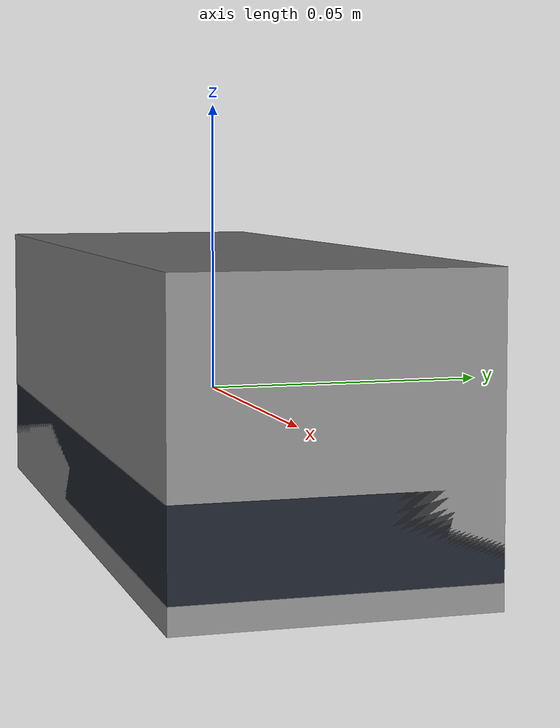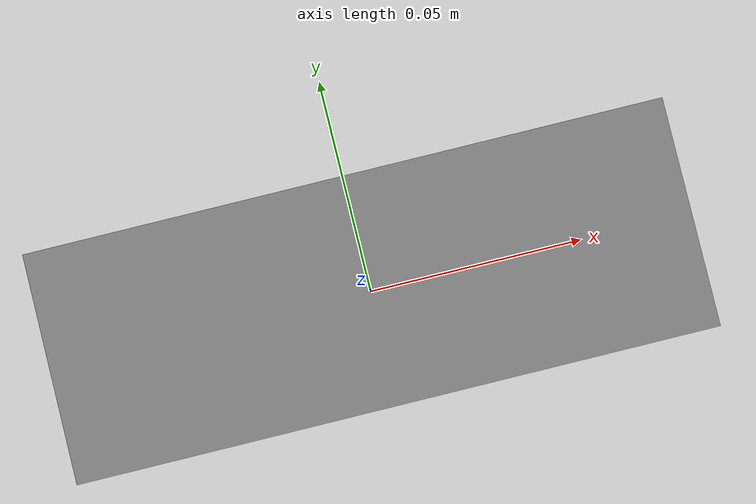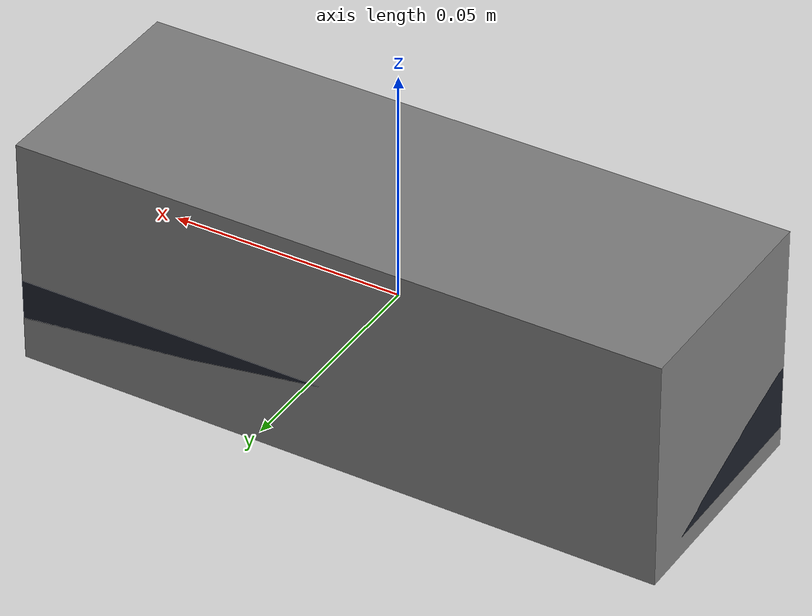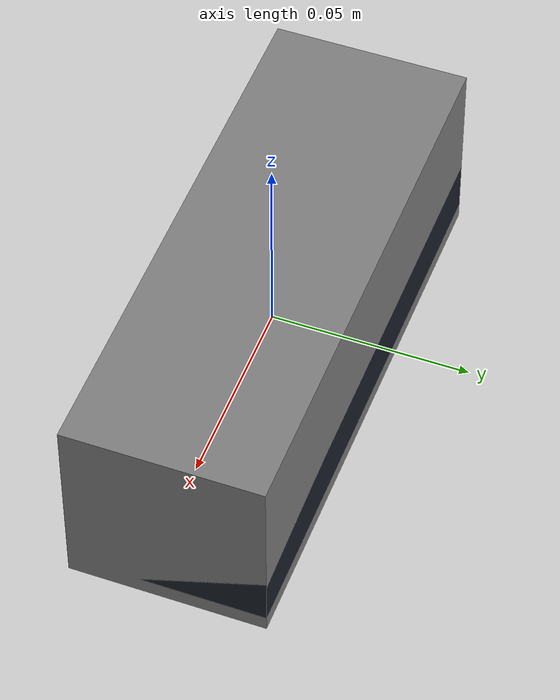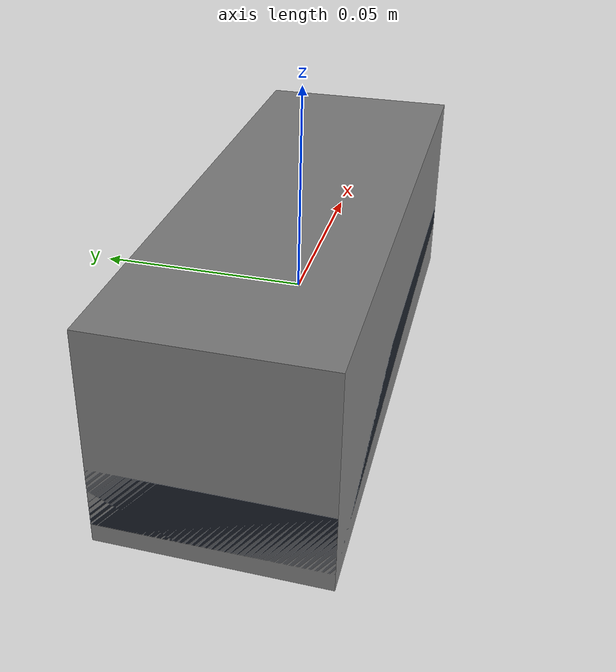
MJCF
<mujoco model="vla82_vla82_050">
  <compiler angle="radian"/>
  <asset>
    <texture name="source_texture" type="2d" file="source_texture.png"/>
    <material name="source_material" texture="source_texture" rgba="1 1 1 1"/>
  </asset>
  <default>
    <default class="visual"><geom contype="0" conaffinity="0" group="1"/></default>
    <default class="collision"><geom contype="1" conaffinity="1" group="0" density="300" friction="0.45 0.004 0.0001" solref="0.02 1" solimp="0.9 0.95 0.001"/></default>
    <default class="region"><geom contype="0" conaffinity="0" group="1" rgba="0 1 0 0" mass="0"/></default>
  </default>
  <worldbody><body><body name="object">
    <geom name="stapler_base" class="visual" type="box" pos="0 0 -0.013750" size="0.070000 0.025000 0.007000" rgba="0.10 0.12 0.16 1"/>
    <geom name="stapler_metal_channel" class="visual" type="box" pos="0.005600 0 -0.002500" size="0.054600 0.012000 0.003000" rgba="0.62 0.66 0.70 1"/>
    <geom name="stapler_upper_arm" class="visual" type="box" pos="0.003500 0 0.011250" size="0.064400 0.020500 0.006000" euler="0 -0.100000 0" rgba="0.16 0.20 0.27 1"/>
    <geom name="stapler_hinge" class="visual" type="cylinder" pos="-0.057400 0 0.002000" size="0.006000 0.019500" quat="0.7071068 0.7071068 0 0" rgba="0.22 0.25 0.29 1"/>
    <geom name="collision" class="collision" type="box" size="0.070000 0.025000 0.025000"/>
    <geom name="reg_bbox" class="region" type="box" pos="0 0 0" size="0.070000 0.025000 0.025000"/>
  </body></body></worldbody>
  <actuator/>
</mujoco>
